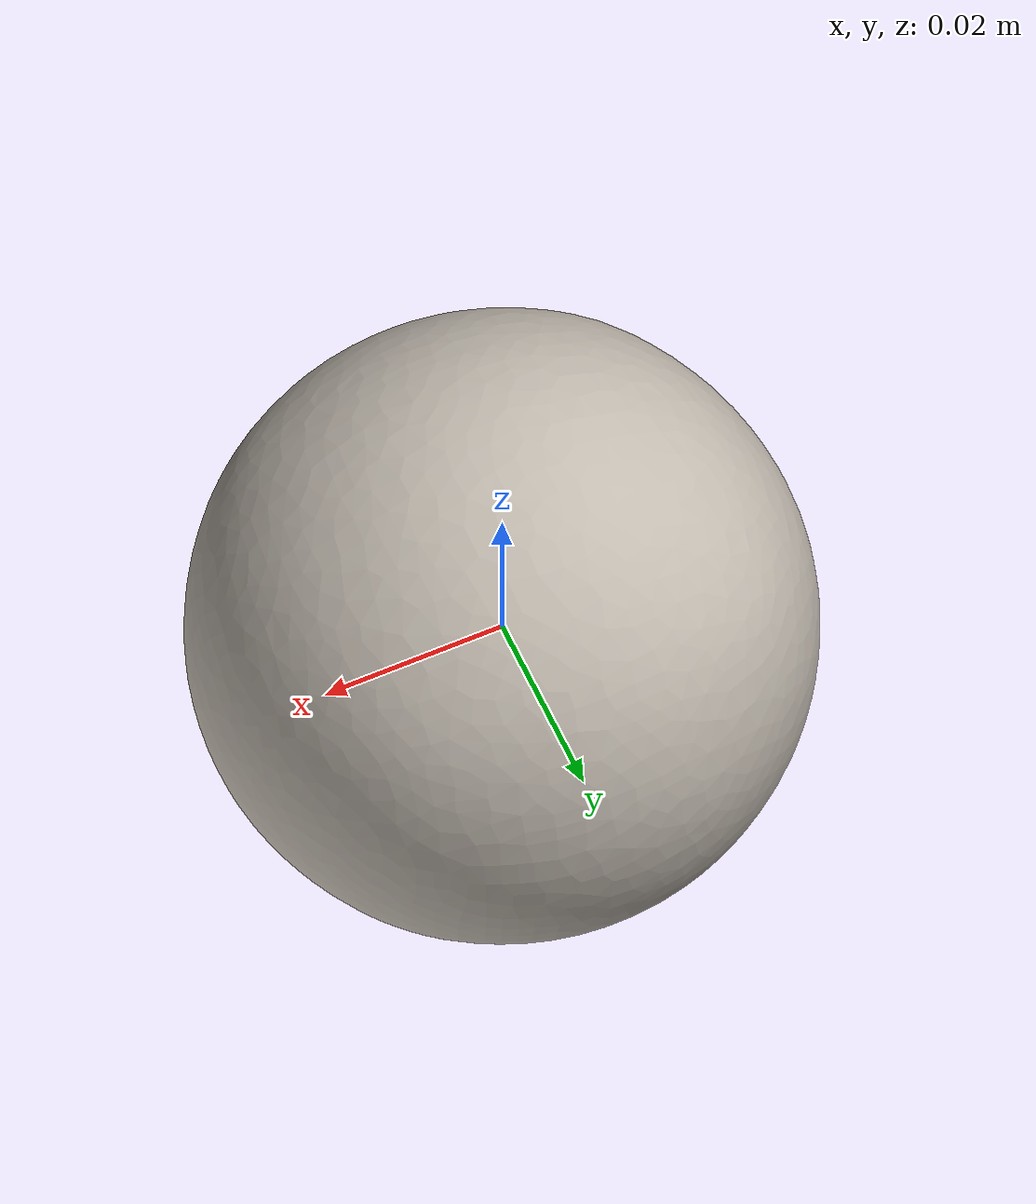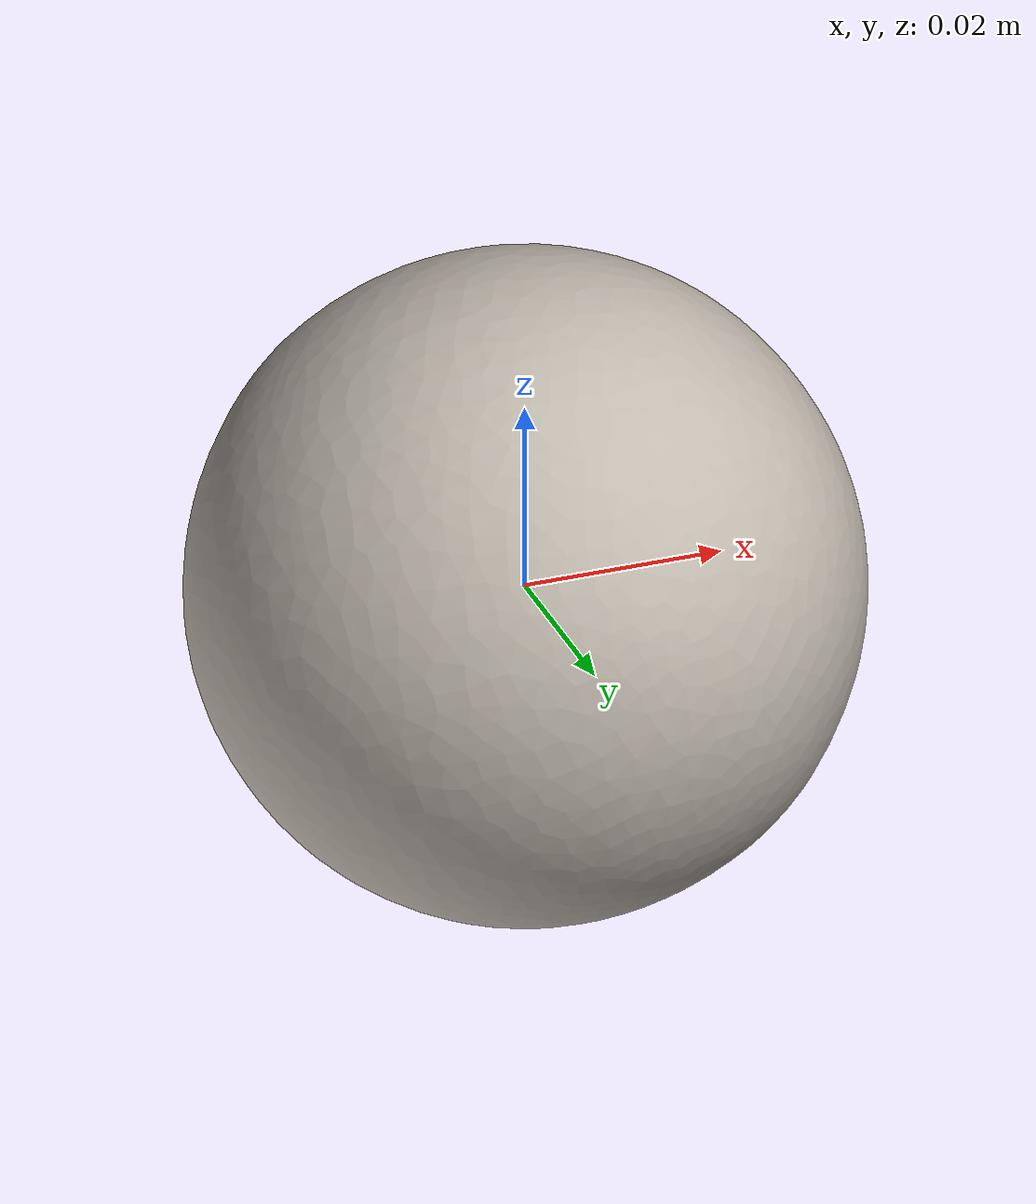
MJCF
<mujoco model="ball_709637f8">
  <compiler angle="radian"/>
  <asset>
    <texture type="2d" name="ball_709637f8_tex" file="ball_709637f8_visual_0.png"/>
    <material name="ball_709637f8_mat" texture="ball_709637f8_tex"/>
    <mesh name="ball_709637f8_visual" content_type="model/obj" file="ball_709637f8_visual.obj" scale="-0.331609 0.331609 0.331609"/>
    <mesh name="ball_709637f8_c0" content_type="model/obj" file="ball_709637f8_c0.obj" scale="-0.331609 0.331609 0.331609"/>
  </asset>
  <worldbody>
    <body name="ball_709637f8">
      <freejoint/>
      <geom name="ball_709637f8_visual" type="mesh" mesh="ball_709637f8_visual" mass="1e-8" contype="0" conaffinity="0" group="2" material="ball_709637f8_mat"/>
      <geom name="ball_709637f8_c0" type="mesh" mesh="ball_709637f8_c0" group="3" density="437.219" friction="0.9 0.05 0.005" condim="4" rgba="0.4 0.5 0.9 0.35"/>
    </body>
  </worldbody>
</mujoco>
